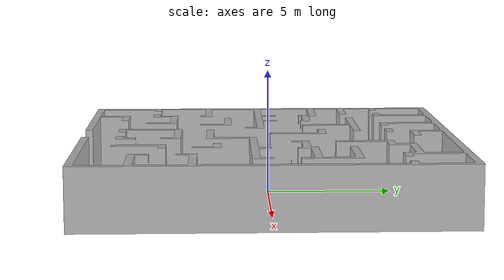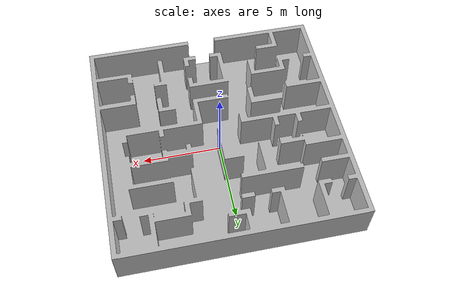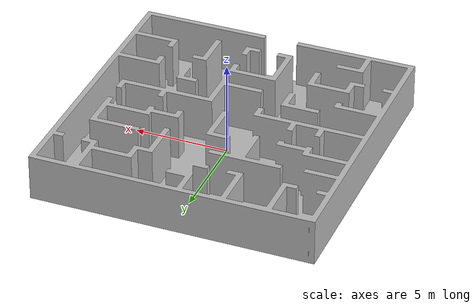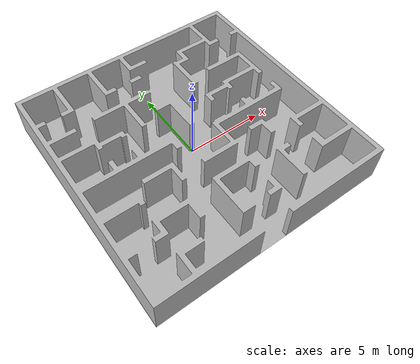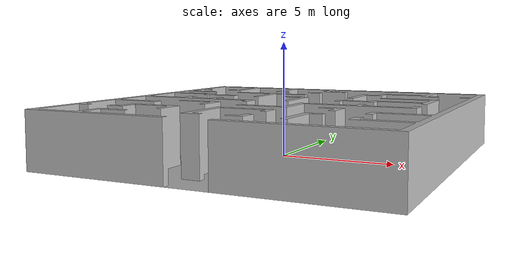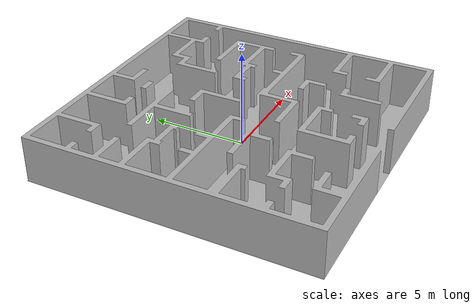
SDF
<?xml version="1.0" ?>
<sdf version="1.5">
  <model name="nidar_arena">
    <static>true</static>
    <link name="link">
      <pose>0 0 0 0 0 0</pose>
      <collision name="collision">
        <geometry>
          <mesh>
            <uri>model://nidar_arena/meshes/mapdraw.stl</uri>
            <scale>1 1 1</scale>
          </mesh>
        </geometry>
        <surface>
          <friction>
            <ode>
              <mu>1.0</mu>
              <mu2>1.0</mu2>
            </ode>
          </friction>
        </surface>
      </collision>
      <visual name="visual">
        <cast_shadows>false</cast_shadows>
        <geometry>
          <mesh>
            <uri>model://nidar_arena/meshes/mapdraw.stl</uri>
            <scale>1 1 1</scale>
          </mesh>
        </geometry>
      </visual>
    </link>
  </model>
</sdf>
